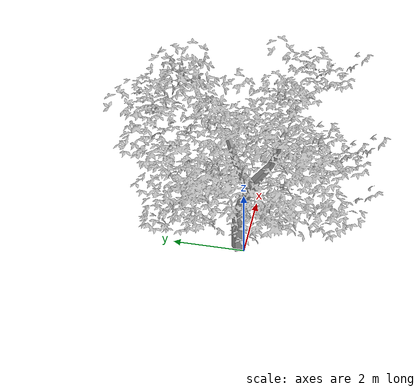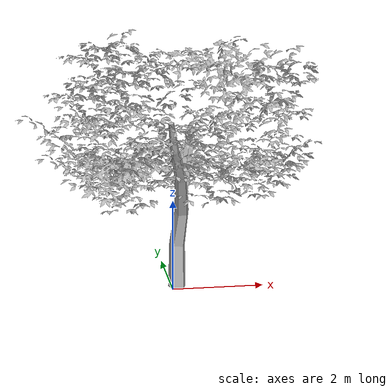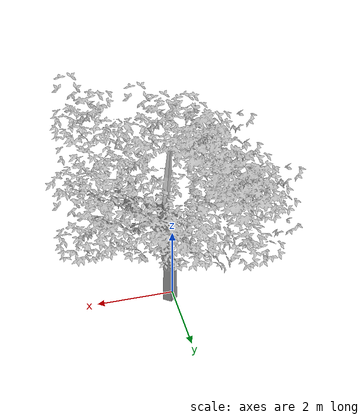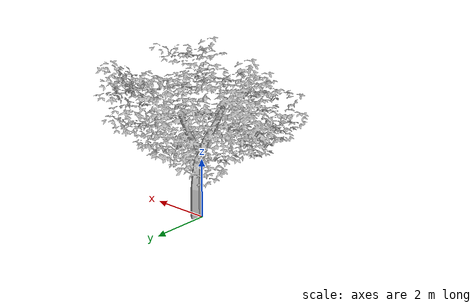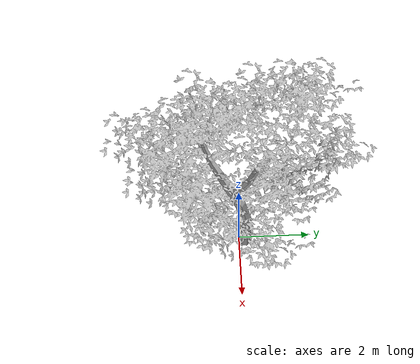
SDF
<?xml version="1.0"?>
<sdf version='1.3'>
	<model name="finihed">
		<pose>0 0 0 0 0 0</pose>
		<static>true</static>
		<allow_auto_disable>true</allow_auto_disable>
		<link name="link">
			<pose>0 0 0 0 0 0</pose>
			<inertial>
				<mass>10</mass>
				<pose>0 0 0 0 0 0</pose>
				<inertia>
					<ixx>0.001</ixx>
					<ixy>0</ixy>
					<ixz>0</ixz>
					<iyy>0.001</iyy>
					<iyz>0</iyz>
					<izz>0.001</izz>
				</inertia>
			</inertial>
			<collision name="collision">
				<laser_retro>0.5</laser_retro>
				<geometry>
					<cylinder>
						<radius>0.15</radius>
						<length>5.0</length>
					</cylinder>
				</geometry>
				<surface>
					<bounce />
					<friction>
						<ode />
					</friction>
					<contact>
						<ode />
					</contact>
				</surface>
			</collision>
			<visual name="visual">
				<geometry>
					<mesh>
						<uri>model://finihed/meshes/finihed.dae</uri>
						<scale>1 1 1</scale>
					</mesh>
				</geometry>
			</visual>
			<velocity_decay>
				<linear>0.0</linear>
				<angular>0.0</angular>
			</velocity_decay>
			<self_collide>false</self_collide>
			<kinematic>false</kinematic>
			<gravity>true</gravity>
		</link>
	</model>
</sdf>
